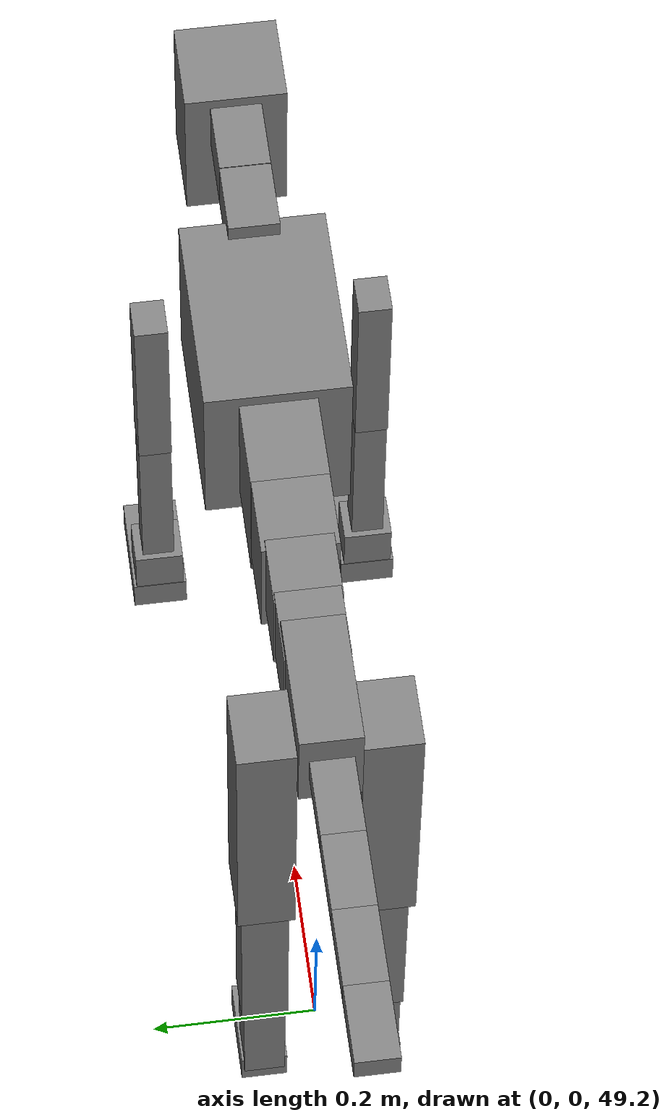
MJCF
<mujoco model="dog">

    <default>
        <joint armature="0.02" stiffness="1" damping="0.2" limited="true"/>
        <geom condim="3" friction="1 0.05 0.05" margin="0.01"/>
        <motor ctrllimited="true" ctrlrange="-1.0 1.0" forcelimited="true" gear="50"/>
    </default>

    <compiler inertiafromgeom="true" angle="radian"/>

    <option timestep="0.016" iterations="50" tolerance="1e-10" solver="Newton" jacobian="dense" cone="pyramidal"/>

    <size nconmax="20000" njmax="60000" nstack="5000000"/>
    <visual>
        <map force="0.1" zfar="30"/>
        <rgba haze="0.15 0.25 0.35 1"/>
        <quality shadowsize="2048"/>
        <global offwidth="800" offheight="800"/>
    </visual>

    <asset>
        <texture type="skybox" builtin="gradient" rgb1="0.3 0.5 0.7" rgb2="0 0 0" width="512" height="512"/>
        <texture name="texplane" type="2d" builtin="checker" rgb1=".2 .3 .4" rgb2=".1 0.15 0.2" width="512" height="512"
                 mark="cross" markrgb=".8 .8 .8"/>
        <texture name="texgeom" type="cube" builtin="flat" mark="cross" width="127" height="1278" rgb1="0.8 0.6 0.4"
                 rgb2="0.8 0.6 0.4" markrgb="1 1 1" random="0.01"/>

        <material name="matplane" reflectance="0.3" texture="texplane" texrepeat="1 1" texuniform="true"/>
        <material name="matgeom" texture="texgeom" texuniform="true" rgba="0.8 0.6 .4 1"/>
    </asset>

    <worldbody>
        <geom name="floor" pos="0 0 0" size="0 0 .25" type="plane" material="matplane" condim="3"/>

        <light directional="false" diffuse=".2 .2 .2" specular="0 0 0" pos="0 0 5" dir="0 0 -1" castshadow="false"/>
        <light mode="targetbodycom" target="torso" directional="false" diffuse=".8 .8 .8" specular="0.3 0.3 0.3"
               pos="0 0 4.0" dir="0 0 -1"/>

        <body name="root" pos="0 0 50">
            <freejoint name="root_1"/>
            <geom type="box" pos="0 0 -0.02" size="0.0774  0.0358  0.063" density="2030"/>

            <body name="spine1" pos="0.054 0 0">
                <joint name="spine1_y" axis="0 1 0" range="0 0.7" limited="true"/>
                <geom type="box" pos="0.02375 0 -0.03" size="0.04375  0.0375  0.05985" density="2030"/>

                <body name="spine2" pos="0.0612 0 0">
                    <joint name="spine2_y" axis="0 1 0" range="-0.15 0.15" limited="true"/>
                    <geom type="box" pos="0.03555  0  -0.04" size="0.04055  0.039  0.06615" density="2030"/>

                    <body name="spine3" pos="0.0730 0 0">
                        <joint name="spine3_y" axis="0 1 0" range="-0.15 0.15" limited="true"/>
                        <geom type="box" pos="0.03555  0  -0.057" size="0.04555  0.0445  0.081" density="2030"/>

                        <body name="spine4" pos="0.0780 0 0">
                            <joint name="spine4_y" axis="0 1 0" range="-0.15 0.15" limited="true"/>
                            <geom type="box" pos="0.05265  0  -0.07" size="0.05265  0.045  0.09135" density="2030"/>

                            <body name="torso" pos="0.1082 0 0">
                                <joint name="torso_y" axis="0 1 0" range="-0.15 0.15" limited="true"/>
                                <geom type="box" pos="0.11925  0  -0.085" size="0.11925  0.085  0.11745"
                                      density="2030"/>

                                <body name="neck1" pos="0.2160  0   0.0180">
                                    <joint name="neck1_y" axis="0 1 0" range="-1.2  -1" limited="true"/>
                                    <geom type="box" pos="0.0423  0  0" size="0.0423  0.03  0.036" density="2325"/>

                                    <body name="neck2" pos="0.0853  0  0">
                                        <joint name="neck2_y" axis="0 1 0" range="0.1  0" limited="true"/>
                                        <geom type="box" pos="0.0423  0  0" size="0.0423  0.03  0.036" density="2325"/>

                                        <body name="head" pos="0.0853  0  0">
                                            <joint name="head_y" axis="0 1 0" range="-0.3  -0.2" limited="true"/>
                                            <geom type="box" pos="0.0531  0  -0.055" size="0.0531  0.06  0.1044"
                                                  density="4030"/>

                                        </body>
                                    </body>
                                </body>

                                <body name="front_shoulder" pos="0.156  0   -0.0480">
                                    <joint name="front_shoulder_y" axis="0 1 0" range="-1 1.5" limited="true"/>
                                    <geom type="box" pos="0 0.13 -0.1044" size="0.0230  0.0196  0.1311" density="1158"/>
                                    <geom type="box" pos="0 -0.13 -0.1044" size="0.0230  0.0196  0.1311"
                                          density="1158"/>

                                    <body name="front_elbow" pos="0  0  -0.2089">
                                        <joint name="front_elbow_y" axis="0 1 0" range="-2 0" limited="true"/>
                                        <geom type="box" pos="0 0.13 -0.1391" size="0.0189  0.0193  0.1391"
                                              density="1081"/>
                                        <geom type="box" pos="0 -0.13 -0.1391" size="0.0189  0.0193  0.1391"
                                              density="1081"/>

                                        <body name="front_wrist" pos="0  0  -0.2782">
                                            <joint name="front_wrist_y" axis="0 1 0" range="-0.2 0" limited="true"/>
                                            <geom type="box" pos="0 0.13 -0.0325" size="0.0263  0.0292  0.0456"
                                                  density="1664"/>
                                            <geom type="box" pos="0 -0.13 -0.0325" size="0.0263  0.0292  0.0456"
                                                  density="1664"/>

                                            <body name="front_finger_end" pos="0  0  -0.0650">
                                                <joint name="front_finger_y" axis="0 1 0" range="-0.4 1"
                                                       limited="true"/>
                                                <geom type="box" pos="0.0326  0.13  -0.0074"
                                                      size="0.0598  0.0326  0.0224" density="1515"/>
                                                <geom type="box" pos="0.0326  -0.13  -0.0074"
                                                      size="0.0598  0.0326  0.0224" density="1515"/>

                                            </body>

                                        </body>
                                    </body>
                                </body>

                            </body>
                        </body>
                    </body>
                </body>
            </body>

            <body name="back_hip" pos="-0.03 0 -0.018">
                <joint name="back_hip_y" axis="0 1 0" range="-1.5 0.3" limited="true"/>
                <geom type="box" pos="0 0.07 -0.1753" size="0.0427  0.0335  0.1981" density="1154"/>
                <geom type="box" pos="0 -0.07 -0.1753" size="0.0427  0.0335  0.1981" density="1154"/>

                <body name="back_knee" pos="0  0  -0.3507">
                    <joint name="back_knee_y" axis="0 1 0" range="0 2.8" limited="true"/>
                    <geom type="box" pos="0 0.07 -0.1466" size="0.0282  0.0278  0.1621" density="1227"/>
                    <geom type="box" pos="0 -0.07 -0.1466" size="0.0282  0.0278  0.1621" density="1227"/>

                    <body name="back_ankle" pos="0  0  -0.2931">
                        <joint name="back_ankle_y" axis="0 1 0" range="-2.2 0" limited="true"/>
                        <geom type="box" pos="0 0.07 -0.0797" size="0.0249  0.0249  0.0910" density="1284"/>
                        <geom type="box" pos="0 -0.07 -0.0797" size="0.0249  0.0249  0.0910" density="1284"/>

                        <body name="back_toe_end" pos="0  0  -0.1595">
                            <joint name="back_toe_y" axis="0 1 0" range="-0.4 1" limited="true"/>
                            <geom type="box" pos="0.0280  0.07  -0.0092" size="0.0513  0.0280  0.0242" density="1515"/>
                            <geom type="box" pos="0.0280  -0.07  -0.0092" size="0.0513  0.0280  0.0242" density="1515"/>

                        </body>
                    </body>
                </body>
            </body>

            <body name="tail1" pos="-0.074 0 -0.006">
                <joint name="tail1_y" axis="0 1 0" range="-0.2 0.2" limited="true"/>
                <geom type="box" pos="-0.0536  0  0" size="0.045  0.025  0.0175" density="1587"/>

                <body name="tail2" pos="-0.09 0 0">
                    <joint name="tail2_y" axis="0 1 0" range="-0.2 0.2" limited="true"/>
                    <geom type="box" pos="-0.0536  0  0" size="0.045  0.025  0.0175" density="1587"/>

                    <body name="tail3" pos="-0.09 0 0">
                        <joint name="tail3_y" axis="0 1 0" range="-0.2 0.2" limited="true"/>
                        <geom type="box" pos="-0.0536  0  0" size="0.045  0.025  0.0175" density="1587"/>

                        <body name="tail4" pos="-0.09 0 0">
                            <joint name="tail4_y" axis="0 1 0" range="-0.2 0.2" limited="true"/>
                            <geom type="box" pos="-0.0536  0  0" size="0.045  0.025  0.0175" density="1587"/>

                        </body>
                    </body>
                </body>
            </body>
        </body>
    </worldbody>

    <actuator>
        <motor joint="spine1_y" forcerange="-150 150     "/>
        <motor joint="spine2_y" forcerange="-150 150     "/>
        <motor joint="spine3_y" forcerange="-150 150     "/>
        <motor joint="spine4_y" forcerange="-150 150     "/>
        <motor joint="torso_y" forcerange="-150 150     "/>
        <motor joint="neck1_y" forcerange="-100 100       "/>
        <motor joint="neck2_y" forcerange="-100 100       "/>
        <motor joint="head_y" forcerange="-150 150       "/>
        <motor joint="front_shoulder_y" forcerange="-114.07 116.87"/>
        <motor joint="front_elbow_y" forcerange="-116.71 123.98"/>
        <motor joint="front_wrist_y" forcerange="-127.21 106.18"/>
        <motor joint="front_finger_y" forcerange="-90.68 43.30"/>
        <motor joint="back_hip_y" forcerange="-280.94 365.30"/>
        <motor joint="back_knee_y" forcerange="-229.00 374.96"/>
        <motor joint="back_angle_y" forcerange="-136.33 162.40"/>
        <motor joint="back_toe_y" forcerange="-104.32 39.54"/>
        <motor joint="tail1_y" forcerange="-50 50     "/>
        <motor joint="tail2_y" forcerange="-50 50     "/>
        <motor joint="tail3_y" forcerange="-50 50     "/>
        <motor joint="tail4_y" forcerange="-50 50     "/>
    </actuator>
</mujoco>
